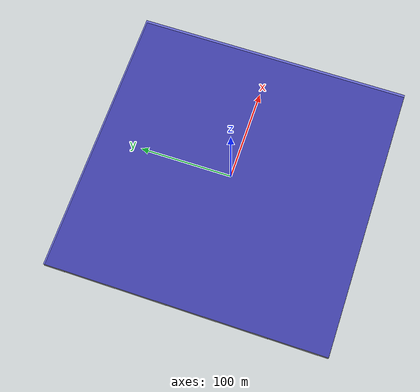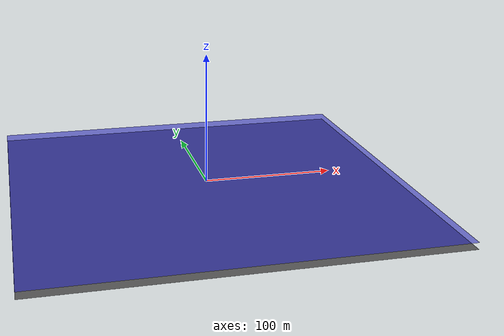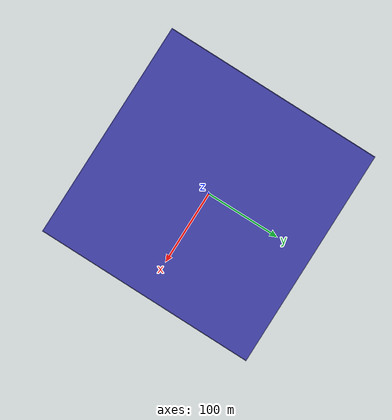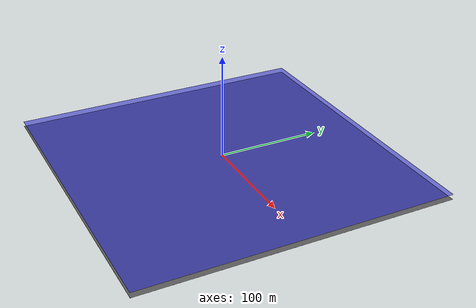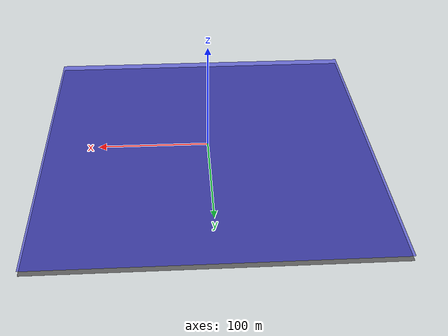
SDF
<?xml version="1.0"?>
<sdf version="1.5">
  <world name="navigator">

    <light name='light_0' type='directional'>
      <cast_shadows>1</cast_shadows>
      <pose frame=''>0 0 10 0 0 0</pose>
      <diffuse>0.6 0.6 0.6 1</diffuse>
      <specular>0.1 0.1 0.1 1</specular>
      <direction>0.1 0.1 -0.9</direction>
      <attenuation>
        <range>1000</range>
        <constant>0.9</constant>
        <linear>0.01</linear>
        <quadratic>0.001</quadratic>
      </attenuation>
    </light>

    <light name='light_1' type='directional'>
      <cast_shadows>1</cast_shadows>
      <pose frame=''>0 0 10 1.5708 0 0</pose>
      <diffuse>0.6 0.6 0.6 1</diffuse>
      <specular>0.1 0.1 0.1 1</specular>
      <direction>0.1 0.1 -0.9</direction>
      <attenuation>
        <range>1000</range>
        <constant>0.9</constant>
        <linear>0.01</linear>
        <quadratic>0.001</quadratic>
      </attenuation>
    </light>

    <light name='light_2' type='directional'>
      <cast_shadows>1</cast_shadows>
      <pose frame=''>0 0 10 -1.5708 0 0</pose>
      <diffuse>0.6 0.6 0.6 1</diffuse>
      <specular>0.1 0.1 0.1 1</specular>
      <direction>0.1 0.1 -0.9</direction>
      <attenuation>
        <range>1000</range>
        <constant>0.9</constant>
        <linear>0.01</linear>
        <quadratic>0.001</quadratic>
      </attenuation>
    </light>

    <light name='light_3' type='directional'>
      <cast_shadows>1</cast_shadows>
      <pose frame=''>0 0 10 0 1.5708 0</pose>
      <diffuse>0.6 0.6 0.6 1</diffuse>
      <specular>0.1 0.1 0.1 1</specular>
      <direction>0.1 0.1 -0.9</direction>
      <attenuation>
        <range>1000</range>
        <constant>0.9</constant>
        <linear>0.01</linear>
        <quadratic>0.001</quadratic>
      </attenuation>
    </light>

    <light name='light_4' type='directional'>
      <cast_shadows>1</cast_shadows>
      <pose frame=''>0 0 10 0 -1.5708 0</pose>
      <diffuse>0.6 0.6 0.6 1</diffuse>
      <specular>0.1 0.1 0.1 1</specular>
      <direction>0.1 0.1 -0.9</direction>
      <attenuation>
        <range>1000</range>
        <constant>0.9</constant>
        <linear>0.01</linear>
        <quadratic>0.001</quadratic>
      </attenuation>
    </light>

    <model name="water">
      <static>true</static>
      <pose>0 0 0 0 3.1415 0</pose>
      <link name="link">
        <visual name="visual">
          <transparency>0.1</transparency>
          <cast_shadows>false</cast_shadows>
          <geometry>
            <box>
              <size>300 300 .02</size>
            </box>
          </geometry>
          <material>
            <ambient>0.2 0.2 0.9 .6</ambient>
            <diffuse>0.2 0.2 0.9 .6</diffuse>
            <specular>0.1 0.1 0.3 .6</specular>
            <emissive>0 0 0 1</emissive>
          </material>
        </visual>
      </link>
    </model>

    <model name="ground_plane">
      <static>true</static>
      <pose>0 0 -5 0 3.1415 0</pose>
      <link name="link">
        <visual name="visual">
          <geometry>
            <box>
              <size>300 300 .02</size>
            </box>
          </geometry>
          <material>
            <ambient>0.4 0.4 0.4 1</ambient>
            <diffuse>0.4 0.4 0.4 1</diffuse>
            <specular>0.1 0.1 0.3 1</specular>
            <emissive>0 0 0 1</emissive>
          </material>
        </visual>
      </link>
    </model>

  </world>
</sdf>
